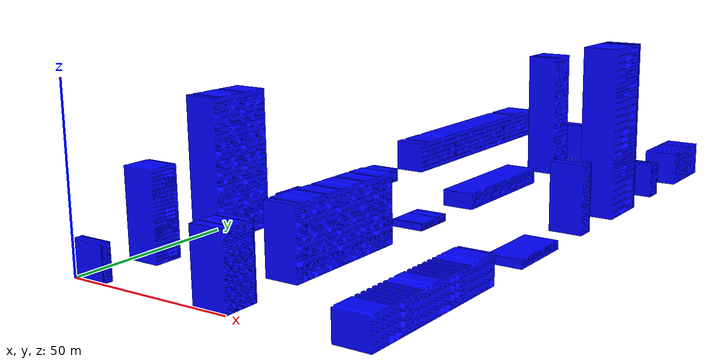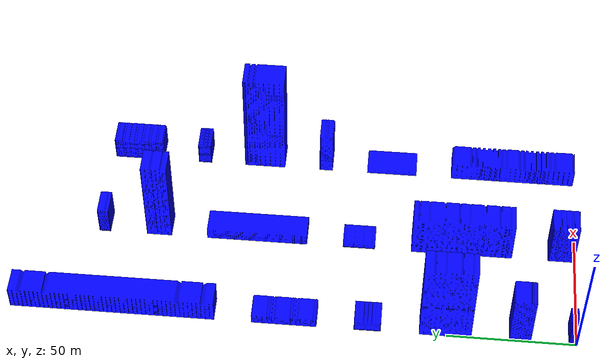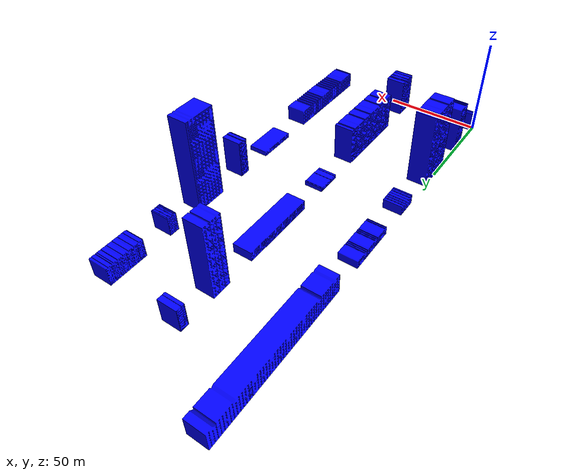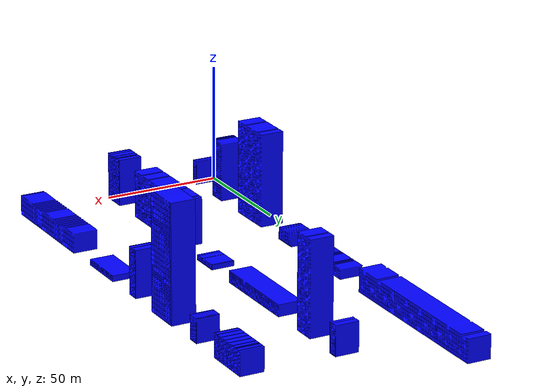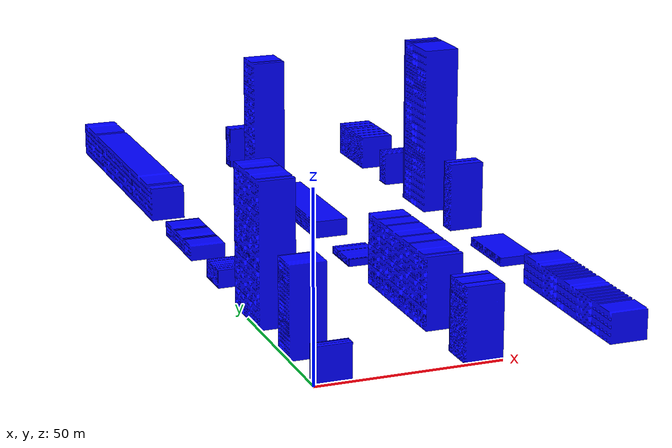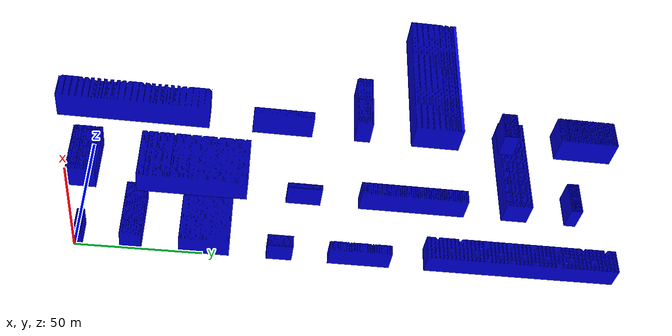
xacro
<?xml version="1.0"?>
<robot xmlns:xacro="http://www.ros.org/wiki/xacro" name="pipe_warehouse">
  <xacro:arg name="sim_gazebo" default="false"/>
  <xacro:property name="gazebo_control" value="false" />

  <!-- Load macros, links, and joints -->

  <xacro:include filename="materials.xacro"/>
  <xacro:include filename="macros.xacro"/>

  <link name="base_link"/>
  <link name="world"/>

  <joint name="world_to_base" type="fixed">
    <parent link="world"/>
    <child link="base_link"/>
  </joint>

  <xacro:include filename="links.xacro"/>
  <xacro:include filename="joints.xacro"/>
</robot>

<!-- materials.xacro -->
<robot xmlns:xacro="http://ros.org/wiki/xacro">
  <material name="blue">
    <color rgba="0 0 1 1"/>
  </material>
</robot>

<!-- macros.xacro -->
<robot xmlns:xacro="http://ros.org/wiki/xacro">

  <!-- Set Link macro -->
<xacro:macro name="pipe_rack" params="name mesh xyz bb_xyz y_len z_len">
  <link name="${name}">

    <visual>
      <origin xyz="${xyz}" rpy="1.5708 0 1.5708"/>
      <geometry>
        <mesh filename="package://pipe_description/meshes/${mesh}" scale="0.001 0.001 0.001"/>
      </geometry>
      <material name="blue"/>
    </visual>

    <collision>
      <origin xyz="${bb_xyz}"/><!-- rpy="1.5708 0 1.5708"/-->
      <geometry>
        <box size="10 ${y_len} ${z_len}"/>
      </geometry>
    </collision>
    <inertial>
        <mass value="1.0"/>
        <origin xyz="${xyz}" rpy="1.5708 0 1.5708"/>
        <inertia ixx="0.1" ixy="0.0" ixz="0.0" iyy="0.1" iyz="0.0" izz="0.1"/>
    </inertial>

  </link>
</xacro:macro>

  <!-- Define joint macro -->
  <xacro:macro name="rack_joint" params="name parent child xyz">
    <joint name="${name}" type="fixed">
      <origin xyz="${xyz}" rpy="0 0 0"/>
      <parent link="${parent}"/>
      <child link="${child}"/>
    </joint>
    <gazebo reference="${name}">
        <material>Gazebo/Blue</material>
    </gazebo>
  </xacro:macro>

</robot>
